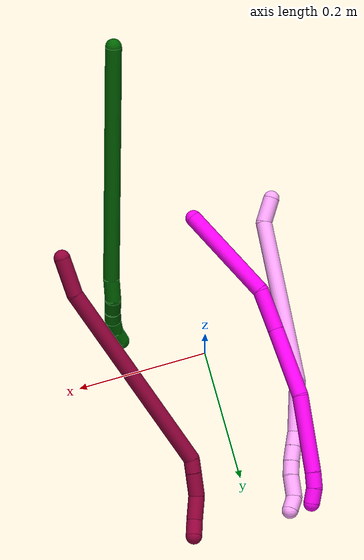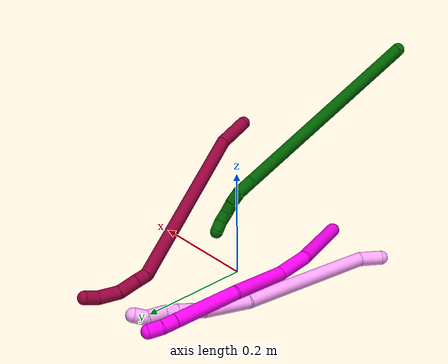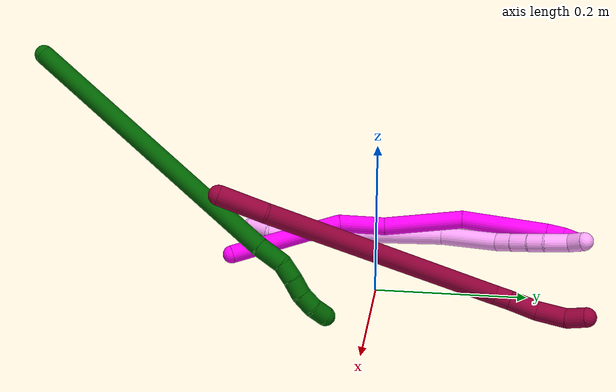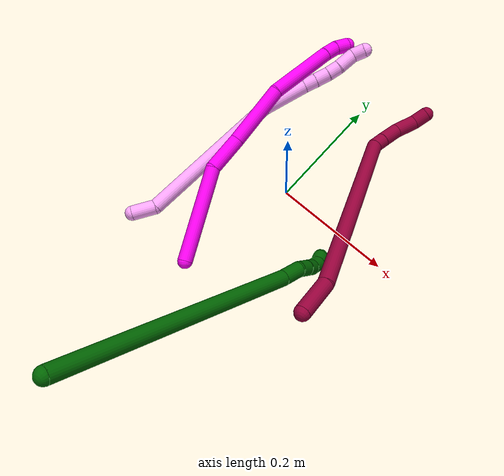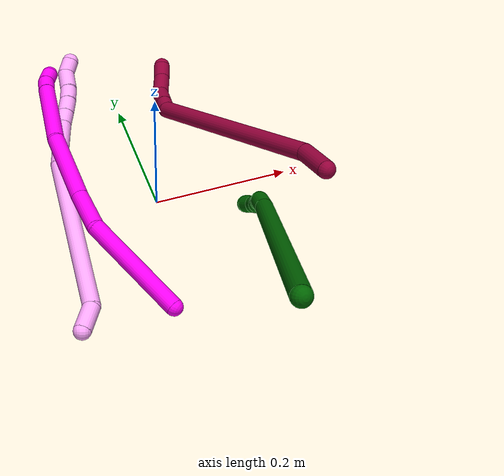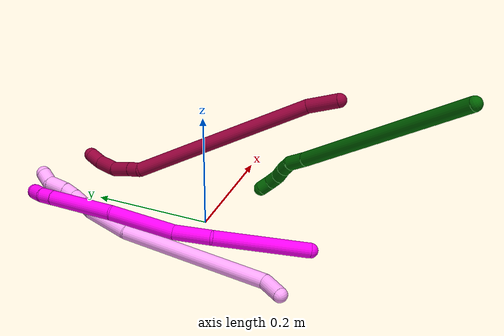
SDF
<sdf version="1.7">
 <world name="default">
  <model name="4">
   <static>0</static>
   <link name="4">
    <collision name="collision-cylinder-e_1_1_4">
     <pose>0.009957 0.015932 -0.006717 -1.96978 0.522515 -0.765976</pose>
     <geometry><cylinder><radius>0.0125</radius><length>0.039905</length></cylinder></geometry>
     <surface>
      <friction><ode><mu>1.16</mu><mu2>1.16</mu2><slip1>0</slip1><slip2>0</slip2></ode></friction>
      <contact><ode><kp>1e+06</kp><kd>1</kd><max_vel>0</max_vel><min_depth>0.001</min_depth></ode></contact>
     </surface>
    </collision>
    <visual name="visual-cylinder-e_1_1_4">
     <pose>0.009957 0.015932 -0.006717 -1.96978 0.522515 -0.765976</pose>
     <geometry><cylinder><radius>0.0125</radius><length>0.039905</length></cylinder></geometry>
     <material><ambient>1 0.65098 0.996078 1</ambient></material>
    </visual>
    <collision name="collision-cylinder-e_2_4_5">
     <pose>0.085458 0.138763 0.006058 -1.39044 0.542758 -0.456116</pose>
     <geometry><cylinder><radius>0.0125</radius><length>0.253796</length></cylinder></geometry>
     <surface>
      <friction><ode><mu>1.16</mu><mu2>1.16</mu2><slip1>0</slip1><slip2>0</slip2></ode></friction>
      <contact><ode><kp>1e+06</kp><kd>1</kd><max_vel>0</max_vel><min_depth>0.001</min_depth></ode></contact>
     </surface>
    </collision>
    <visual name="visual-cylinder-e_2_4_5">
     <pose>0.085458 0.138763 0.006058 -1.39044 0.542758 -0.456116</pose>
     <geometry><cylinder><radius>0.0125</radius><length>0.253796</length></cylinder></geometry>
     <material><ambient>1 0.65098 0.996078 1</ambient></material>
    </visual>
    <collision name="collision-cylinder-e_3_5_6">
     <pose>0.172602 0.279778 0.022072 -1.6724 0.562119 -0.618737</pose>
     <geometry><cylinder><radius>0.0125</radius><length>0.08106</length></cylinder></geometry>
     <surface>
      <friction><ode><mu>1.16</mu><mu2>1.16</mu2><slip1>0</slip1><slip2>0</slip2></ode></friction>
      <contact><ode><kp>1e+06</kp><kd>1</kd><max_vel>0</max_vel><min_depth>0.001</min_depth></ode></contact>
     </surface>
    </collision>
    <visual name="visual-cylinder-e_3_5_6">
     <pose>0.172602 0.279778 0.022072 -1.6724 0.562119 -0.618737</pose>
     <geometry><cylinder><radius>0.0125</radius><length>0.08106</length></cylinder></geometry>
     <material><ambient>1 0.65098 0.996078 1</ambient></material>
    </visual>
    <collision name="collision-cylinder-e_4_6_7">
     <pose>0.201436 0.322362 0.016395 -1.82484 0.690817 -0.870843</pose>
     <geometry><cylinder><radius>0.0125</radius><length>0.022702</length></cylinder></geometry>
     <surface>
      <friction><ode><mu>1.16</mu><mu2>1.16</mu2><slip1>0</slip1><slip2>0</slip2></ode></friction>
      <contact><ode><kp>1e+06</kp><kd>1</kd><max_vel>0</max_vel><min_depth>0.001</min_depth></ode></contact>
     </surface>
    </collision>
    <visual name="visual-cylinder-e_4_6_7">
     <pose>0.201436 0.322362 0.016395 -1.82484 0.690817 -0.870843</pose>
     <geometry><cylinder><radius>0.0125</radius><length>0.022702</length></cylinder></geometry>
     <material><ambient>1 0.65098 0.996078 1</ambient></material>
    </visual>
    <collision name="collision-cylinder-e_5_7_8">
     <pose>0.216306 0.339866 0.012169 -1.79153 0.689615 -0.843504</pose>
     <geometry><cylinder><radius>0.0125</radius><length>0.024006</length></cylinder></geometry>
     <surface>
      <friction><ode><mu>1.16</mu><mu2>1.16</mu2><slip1>0</slip1><slip2>0</slip2></ode></friction>
      <contact><ode><kp>1e+06</kp><kd>1</kd><max_vel>0</max_vel><min_depth>0.001</min_depth></ode></contact>
     </surface>
    </collision>
    <visual name="visual-cylinder-e_5_7_8">
     <pose>0.216306 0.339866 0.012169 -1.79153 0.689615 -0.843504</pose>
     <geometry><cylinder><radius>0.0125</radius><length>0.024006</length></cylinder></geometry>
     <material><ambient>1 0.65098 0.996078 1</ambient></material>
    </visual>
    <collision name="collision-cylinder-e_6_8_9">
     <pose>0.230882 0.357476 0.009414 -1.65541 0.678664 -0.73361</pose>
     <geometry><cylinder><radius>0.0125</radius><length>0.022111</length></cylinder></geometry>
     <surface>
      <friction><ode><mu>1.16</mu><mu2>1.16</mu2><slip1>0</slip1><slip2>0</slip2></ode></friction>
      <contact><ode><kp>1e+06</kp><kd>1</kd><max_vel>0</max_vel><min_depth>0.001</min_depth></ode></contact>
     </surface>
    </collision>
    <visual name="visual-cylinder-e_6_8_9">
     <pose>0.230882 0.357476 0.009414 -1.65541 0.678664 -0.73361</pose>
     <geometry><cylinder><radius>0.0125</radius><length>0.022111</length></cylinder></geometry>
     <material><ambient>1 0.65098 0.996078 1</ambient></material>
    </visual>
    <collision name="collision-cylinder-e_7_9_10">
     <pose>0.247182 0.379965 0.010363 -1.45092 0.588819 -0.525353</pose>
     <geometry><cylinder><radius>0.0125</radius><length>0.033705</length></cylinder></geometry>
     <surface>
      <friction><ode><mu>1.16</mu><mu2>1.16</mu2><slip1>0</slip1><slip2>0</slip2></ode></friction>
      <contact><ode><kp>1e+06</kp><kd>1</kd><max_vel>0</max_vel><min_depth>0.001</min_depth></ode></contact>
     </surface>
    </collision>
    <visual name="visual-cylinder-e_7_9_10">
     <pose>0.247182 0.379965 0.010363 -1.45092 0.588819 -0.525353</pose>
     <geometry><cylinder><radius>0.0125</radius><length>0.033705</length></cylinder></geometry>
     <material><ambient>1 0.65098 0.996078 1</ambient></material>
    </visual>
    <collision name="collision-cylinder-e_8_10_2">
     <pose>0.26491 0.40072 0.008551 -2.04231 0.828317 -1.24482</pose>
     <geometry><cylinder><radius>0.0125</radius><length>0.022715</length></cylinder></geometry>
     <surface>
      <friction><ode><mu>1.16</mu><mu2>1.16</mu2><slip1>0</slip1><slip2>0</slip2></ode></friction>
      <contact><ode><kp>1e+06</kp><kd>1</kd><max_vel>0</max_vel><min_depth>0.001</min_depth></ode></contact>
     </surface>
    </collision>
    <visual name="visual-cylinder-e_8_10_2">
     <pose>0.26491 0.40072 0.008551 -2.04231 0.828317 -1.24482</pose>
     <geometry><cylinder><radius>0.0125</radius><length>0.022715</length></cylinder></geometry>
     <material><ambient>1 0.65098 0.996078 1</ambient></material>
    </visual>
    <collision name="collision-sphere-2">
     <pose>0.273278 0.407561 0.005063 0 -0 0</pose>
     <geometry><sphere><radius>0.0125</radius></sphere></geometry>
     <surface>
      <friction><ode><mu>1.16</mu><mu2>1.16</mu2><slip1>0</slip1><slip2>0</slip2></ode></friction>
      <contact><ode><kp>1e+06</kp><kd>1</kd><max_vel>0</max_vel><min_depth>0.001</min_depth></ode></contact>
     </surface>
    </collision>
    <visual name="visual-sphere-2">
     <pose>0.273278 0.407561 0.005063 0 -0 0</pose>
     <geometry><sphere><radius>0.0125</radius></sphere></geometry>
     <material><ambient>1 0.65098 0.996078 1</ambient></material>
    </visual>
    <collision name="collision-sphere-10">
     <pose>0.256542 0.393879 0.012039 0 -0 0</pose>
     <geometry><sphere><radius>0.0125</radius></sphere></geometry>
     <surface>
      <friction><ode><mu>1.16</mu><mu2>1.16</mu2><slip1>0</slip1><slip2>0</slip2></ode></friction>
      <contact><ode><kp>1e+06</kp><kd>1</kd><max_vel>0</max_vel><min_depth>0.001</min_depth></ode></contact>
     </surface>
    </collision>
    <visual name="visual-sphere-10">
     <pose>0.256542 0.393879 0.012039 0 -0 0</pose>
     <geometry><sphere><radius>0.0125</radius></sphere></geometry>
     <material><ambient>1 0.65098 0.996078 1</ambient></material>
    </visual>
    <collision name="collision-sphere-9">
     <pose>0.237822 0.366051 0.008687 0 -0 0</pose>
     <geometry><sphere><radius>0.0125</radius></sphere></geometry>
     <surface>
      <friction><ode><mu>1.16</mu><mu2>1.16</mu2><slip1>0</slip1><slip2>0</slip2></ode></friction>
      <contact><ode><kp>1e+06</kp><kd>1</kd><max_vel>0</max_vel><min_depth>0.001</min_depth></ode></contact>
     </surface>
    </collision>
    <visual name="visual-sphere-9">
     <pose>0.237822 0.366051 0.008687 0 -0 0</pose>
     <geometry><sphere><radius>0.0125</radius></sphere></geometry>
     <material><ambient>1 0.65098 0.996078 1</ambient></material>
    </visual>
    <collision name="collision-sphere-4">
     <pose>0.019915 0.031864 -0.013434 0 -0 0</pose>
     <geometry><sphere><radius>0.0125</radius></sphere></geometry>
     <surface>
      <friction><ode><mu>1.16</mu><mu2>1.16</mu2><slip1>0</slip1><slip2>0</slip2></ode></friction>
      <contact><ode><kp>1e+06</kp><kd>1</kd><max_vel>0</max_vel><min_depth>0.001</min_depth></ode></contact>
     </surface>
    </collision>
    <visual name="visual-sphere-4">
     <pose>0.019915 0.031864 -0.013434 0 -0 0</pose>
     <geometry><sphere><radius>0.0125</radius></sphere></geometry>
     <material><ambient>1 0.65098 0.996078 1</ambient></material>
    </visual>
    <collision name="collision-sphere-1">
     <geometry><sphere><radius>0.0125</radius></sphere></geometry>
     <surface>
      <friction><ode><mu>1.16</mu><mu2>1.16</mu2><slip1>0</slip1><slip2>0</slip2></ode></friction>
      <contact><ode><kp>1e+06</kp><kd>1</kd><max_vel>0</max_vel><min_depth>0.001</min_depth></ode></contact>
     </surface>
    </collision>
    <visual name="visual-sphere-1">
     <geometry><sphere><radius>0.0125</radius></sphere></geometry>
     <material><ambient>1 0.65098 0.996078 1</ambient></material>
    </visual>
    <collision name="collision-sphere-8">
     <pose>0.223942 0.348901 0.010142 0 -0 0</pose>
     <geometry><sphere><radius>0.0125</radius></sphere></geometry>
     <surface>
      <friction><ode><mu>1.16</mu><mu2>1.16</mu2><slip1>0</slip1><slip2>0</slip2></ode></friction>
      <contact><ode><kp>1e+06</kp><kd>1</kd><max_vel>0</max_vel><min_depth>0.001</min_depth></ode></contact>
     </surface>
    </collision>
    <visual name="visual-sphere-8">
     <pose>0.223942 0.348901 0.010142 0 -0 0</pose>
     <geometry><sphere><radius>0.0125</radius></sphere></geometry>
     <material><ambient>1 0.65098 0.996078 1</ambient></material>
    </visual>
    <collision name="collision-sphere-5">
     <pose>0.151 0.245661 0.02555 0 -0 0</pose>
     <geometry><sphere><radius>0.0125</radius></sphere></geometry>
     <surface>
      <friction><ode><mu>1.16</mu><mu2>1.16</mu2><slip1>0</slip1><slip2>0</slip2></ode></friction>
      <contact><ode><kp>1e+06</kp><kd>1</kd><max_vel>0</max_vel><min_depth>0.001</min_depth></ode></contact>
     </surface>
    </collision>
    <visual name="visual-sphere-5">
     <pose>0.151 0.245661 0.02555 0 -0 0</pose>
     <geometry><sphere><radius>0.0125</radius></sphere></geometry>
     <material><ambient>1 0.65098 0.996078 1</ambient></material>
    </visual>
    <collision name="collision-sphere-6">
     <pose>0.194204 0.313894 0.018594 0 -0 0</pose>
     <geometry><sphere><radius>0.0125</radius></sphere></geometry>
     <surface>
      <friction><ode><mu>1.16</mu><mu2>1.16</mu2><slip1>0</slip1><slip2>0</slip2></ode></friction>
      <contact><ode><kp>1e+06</kp><kd>1</kd><max_vel>0</max_vel><min_depth>0.001</min_depth></ode></contact>
     </surface>
    </collision>
    <visual name="visual-sphere-6">
     <pose>0.194204 0.313894 0.018594 0 -0 0</pose>
     <geometry><sphere><radius>0.0125</radius></sphere></geometry>
     <material><ambient>1 0.65098 0.996078 1</ambient></material>
    </visual>
    <collision name="collision-sphere-7">
     <pose>0.208669 0.33083 0.014197 0 -0 0</pose>
     <geometry><sphere><radius>0.0125</radius></sphere></geometry>
     <surface>
      <friction><ode><mu>1.16</mu><mu2>1.16</mu2><slip1>0</slip1><slip2>0</slip2></ode></friction>
      <contact><ode><kp>1e+06</kp><kd>1</kd><max_vel>0</max_vel><min_depth>0.001</min_depth></ode></contact>
     </surface>
    </collision>
    <visual name="visual-sphere-7">
     <pose>0.208669 0.33083 0.014197 0 -0 0</pose>
     <geometry><sphere><radius>0.0125</radius></sphere></geometry>
     <material><ambient>1 0.65098 0.996078 1</ambient></material>
    </visual>
    <inertial>
     <pose>0.130593 0.207645 0.008949 0 -0 0</pose>
     <mass>0.5</mass>
     <inertia>
      <ixx>0.000569</ixx>
      <ixy>0</ixy>
      <ixz>0</ixz>
      <iyy>2.4e-05</iyy>
      <iyz>0</iyz>
      <izz>-0.001955</izz>
     </inertia>
    </inertial>
   </link>
   <pose>-0.164673 -0.201954 0.021502 -1.41065 -1.05729 1.2031</pose>
  </model>
  <model name="6">
   <static>0</static>
   <link name="6">
    <collision name="collision-cylinder-e_1_1_4">
     <pose>-0.000641 0.058292 -0.179311 -2.82728 -0.003401 0.021462</pose>
     <geometry><cylinder><radius>0.0125</radius><length>0.377099</length></cylinder></geometry>
     <surface>
      <friction><ode><mu>1.16</mu><mu2>1.16</mu2><slip1>0</slip1><slip2>0</slip2></ode></friction>
      <contact><ode><kp>1e+06</kp><kd>1</kd><max_vel>0</max_vel><min_depth>0.001</min_depth></ode></contact>
     </surface>
    </collision>
    <visual name="visual-cylinder-e_1_1_4">
     <pose>-0.000641 0.058292 -0.179311 -2.82728 -0.003401 0.021462</pose>
     <geometry><cylinder><radius>0.0125</radius><length>0.377099</length></cylinder></geometry>
     <material><ambient>0 0.392157 0.003922 1</ambient></material>
    </visual>
    <collision name="collision-cylinder-e_2_4_5">
     <pose>-0.00282 0.121086 -0.375623 -2.88273 -0.087206 0.646887</pose>
     <geometry><cylinder><radius>0.0125</radius><length>0.035307</length></cylinder></geometry>
     <surface>
      <friction><ode><mu>1.16</mu><mu2>1.16</mu2><slip1>0</slip1><slip2>0</slip2></ode></friction>
      <contact><ode><kp>1e+06</kp><kd>1</kd><max_vel>0</max_vel><min_depth>0.001</min_depth></ode></contact>
     </surface>
    </collision>
    <visual name="visual-cylinder-e_2_4_5">
     <pose>-0.00282 0.121086 -0.375623 -2.88273 -0.087206 0.646887</pose>
     <geometry><cylinder><radius>0.0125</radius><length>0.035307</length></cylinder></geometry>
     <material><ambient>0 0.392157 0.003922 1</ambient></material>
    </visual>
    <collision name="collision-cylinder-e_3_5_6">
     <pose>-0.00116 0.128155 -0.403468 -2.90914 0.279434 -1.75582</pose>
     <geometry><cylinder><radius>0.0125</radius><length>0.023187</length></cylinder></geometry>
     <surface>
      <friction><ode><mu>1.16</mu><mu2>1.16</mu2><slip1>0</slip1><slip2>0</slip2></ode></friction>
      <contact><ode><kp>1e+06</kp><kd>1</kd><max_vel>0</max_vel><min_depth>0.001</min_depth></ode></contact>
     </surface>
    </collision>
    <visual name="visual-cylinder-e_3_5_6">
     <pose>-0.00116 0.128155 -0.403468 -2.90914 0.279434 -1.75582</pose>
     <geometry><cylinder><radius>0.0125</radius><length>0.023187</length></cylinder></geometry>
     <material><ambient>0 0.392157 0.003922 1</ambient></material>
    </visual>
    <collision name="collision-cylinder-e_4_6_7">
     <pose>0.00606 0.13213 -0.424417 -3.00319 0.375562 -2.44204</pose>
     <geometry><cylinder><radius>0.0125</radius><length>0.021933</length></cylinder></geometry>
     <surface>
      <friction><ode><mu>1.16</mu><mu2>1.16</mu2><slip1>0</slip1><slip2>0</slip2></ode></friction>
      <contact><ode><kp>1e+06</kp><kd>1</kd><max_vel>0</max_vel><min_depth>0.001</min_depth></ode></contact>
     </surface>
    </collision>
    <visual name="visual-cylinder-e_4_6_7">
     <pose>0.00606 0.13213 -0.424417 -3.00319 0.375562 -2.44204</pose>
     <geometry><cylinder><radius>0.0125</radius><length>0.021933</length></cylinder></geometry>
     <material><ambient>0 0.392157 0.003922 1</ambient></material>
    </visual>
    <collision name="collision-cylinder-e_5_7_8">
     <pose>0.011689 0.134387 -0.445352 -3.06331 0.146831 -2.16302</pose>
     <geometry><cylinder><radius>0.0125</radius><length>0.021964</length></cylinder></geometry>
     <surface>
      <friction><ode><mu>1.16</mu><mu2>1.16</mu2><slip1>0</slip1><slip2>0</slip2></ode></friction>
      <contact><ode><kp>1e+06</kp><kd>1</kd><max_vel>0</max_vel><min_depth>0.001</min_depth></ode></contact>
     </surface>
    </collision>
    <visual name="visual-cylinder-e_5_7_8">
     <pose>0.011689 0.134387 -0.445352 -3.06331 0.146831 -2.16302</pose>
     <geometry><cylinder><radius>0.0125</radius><length>0.021964</length></cylinder></geometry>
     <material><ambient>0 0.392157 0.003922 1</ambient></material>
    </visual>
    <collision name="collision-cylinder-e_6_8_2">
     <pose>0.01315 0.13323 -0.466238 2.9446 -0.014227 -0.143729</pose>
     <geometry><cylinder><radius>0.0125</radius><length>0.02051</length></cylinder></geometry>
     <surface>
      <friction><ode><mu>1.16</mu><mu2>1.16</mu2><slip1>0</slip1><slip2>0</slip2></ode></friction>
      <contact><ode><kp>1e+06</kp><kd>1</kd><max_vel>0</max_vel><min_depth>0.001</min_depth></ode></contact>
     </surface>
    </collision>
    <visual name="visual-cylinder-e_6_8_2">
     <pose>0.01315 0.13323 -0.466238 2.9446 -0.014227 -0.143729</pose>
     <geometry><cylinder><radius>0.0125</radius><length>0.02051</length></cylinder></geometry>
     <material><ambient>0 0.392157 0.003922 1</ambient></material>
    </visual>
    <collision name="collision-sphere-2">
     <pose>0.013004 0.131223 -0.476293 0 -0 0</pose>
     <geometry><sphere><radius>0.0125</radius></sphere></geometry>
     <surface>
      <friction><ode><mu>1.16</mu><mu2>1.16</mu2><slip1>0</slip1><slip2>0</slip2></ode></friction>
      <contact><ode><kp>1e+06</kp><kd>1</kd><max_vel>0</max_vel><min_depth>0.001</min_depth></ode></contact>
     </surface>
    </collision>
    <visual name="visual-sphere-2">
     <pose>0.013004 0.131223 -0.476293 0 -0 0</pose>
     <geometry><sphere><radius>0.0125</radius></sphere></geometry>
     <material><ambient>0 0.392157 0.003922 1</ambient></material>
    </visual>
    <collision name="collision-sphere-4">
     <pose>-0.001283 0.116584 -0.358623 0 -0 0</pose>
     <geometry><sphere><radius>0.0125</radius></sphere></geometry>
     <surface>
      <friction><ode><mu>1.16</mu><mu2>1.16</mu2><slip1>0</slip1><slip2>0</slip2></ode></friction>
      <contact><ode><kp>1e+06</kp><kd>1</kd><max_vel>0</max_vel><min_depth>0.001</min_depth></ode></contact>
     </surface>
    </collision>
    <visual name="visual-sphere-4">
     <pose>-0.001283 0.116584 -0.358623 0 -0 0</pose>
     <geometry><sphere><radius>0.0125</radius></sphere></geometry>
     <material><ambient>0 0.392157 0.003922 1</ambient></material>
    </visual>
    <collision name="collision-sphere-1">
     <geometry><sphere><radius>0.0125</radius></sphere></geometry>
     <surface>
      <friction><ode><mu>1.16</mu><mu2>1.16</mu2><slip1>0</slip1><slip2>0</slip2></ode></friction>
      <contact><ode><kp>1e+06</kp><kd>1</kd><max_vel>0</max_vel><min_depth>0.001</min_depth></ode></contact>
     </surface>
    </collision>
    <visual name="visual-sphere-1">
     <geometry><sphere><radius>0.0125</radius></sphere></geometry>
     <material><ambient>0 0.392157 0.003922 1</ambient></material>
    </visual>
    <collision name="collision-sphere-8">
     <pose>0.013296 0.135237 -0.456182 0 -0 0</pose>
     <geometry><sphere><radius>0.0125</radius></sphere></geometry>
     <surface>
      <friction><ode><mu>1.16</mu><mu2>1.16</mu2><slip1>0</slip1><slip2>0</slip2></ode></friction>
      <contact><ode><kp>1e+06</kp><kd>1</kd><max_vel>0</max_vel><min_depth>0.001</min_depth></ode></contact>
     </surface>
    </collision>
    <visual name="visual-sphere-8">
     <pose>0.013296 0.135237 -0.456182 0 -0 0</pose>
     <geometry><sphere><radius>0.0125</radius></sphere></geometry>
     <material><ambient>0 0.392157 0.003922 1</ambient></material>
    </visual>
    <collision name="collision-sphere-5">
     <pose>-0.004358 0.125588 -0.392624 0 -0 0</pose>
     <geometry><sphere><radius>0.0125</radius></sphere></geometry>
     <surface>
      <friction><ode><mu>1.16</mu><mu2>1.16</mu2><slip1>0</slip1><slip2>0</slip2></ode></friction>
      <contact><ode><kp>1e+06</kp><kd>1</kd><max_vel>0</max_vel><min_depth>0.001</min_depth></ode></contact>
     </surface>
    </collision>
    <visual name="visual-sphere-5">
     <pose>-0.004358 0.125588 -0.392624 0 -0 0</pose>
     <geometry><sphere><radius>0.0125</radius></sphere></geometry>
     <material><ambient>0 0.392157 0.003922 1</ambient></material>
    </visual>
    <collision name="collision-sphere-6">
     <pose>0.002038 0.130722 -0.414312 0 -0 0</pose>
     <geometry><sphere><radius>0.0125</radius></sphere></geometry>
     <surface>
      <friction><ode><mu>1.16</mu><mu2>1.16</mu2><slip1>0</slip1><slip2>0</slip2></ode></friction>
      <contact><ode><kp>1e+06</kp><kd>1</kd><max_vel>0</max_vel><min_depth>0.001</min_depth></ode></contact>
     </surface>
    </collision>
    <visual name="visual-sphere-6">
     <pose>0.002038 0.130722 -0.414312 0 -0 0</pose>
     <geometry><sphere><radius>0.0125</radius></sphere></geometry>
     <material><ambient>0 0.392157 0.003922 1</ambient></material>
    </visual>
    <collision name="collision-sphere-7">
     <pose>0.010083 0.133537 -0.434521 0 -0 0</pose>
     <geometry><sphere><radius>0.0125</radius></sphere></geometry>
     <surface>
      <friction><ode><mu>1.16</mu><mu2>1.16</mu2><slip1>0</slip1><slip2>0</slip2></ode></friction>
      <contact><ode><kp>1e+06</kp><kd>1</kd><max_vel>0</max_vel><min_depth>0.001</min_depth></ode></contact>
     </surface>
    </collision>
    <visual name="visual-sphere-7">
     <pose>0.010083 0.133537 -0.434521 0 -0 0</pose>
     <geometry><sphere><radius>0.0125</radius></sphere></geometry>
     <material><ambient>0 0.392157 0.003922 1</ambient></material>
    </visual>
    <inertial>
     <pose>0.000582 0.075622 -0.237777 0 -0 0</pose>
     <mass>0.5</mass>
     <inertia>
      <ixx>0.004581</ixx>
      <ixy>0</ixy>
      <ixz>0</ixz>
      <iyy>-0.00416</iyy>
      <iyz>0</iyz>
      <izz>-0.001411</izz>
     </inertia>
    </inertial>
   </link>
   <pose>0.018105 -0.432183 0.311392 0.167712 0.866195 -1.26917</pose>
  </model>
  <model name="8">
   <static>0</static>
   <link name="8">
    <collision name="collision-cylinder-e_1_1_4">
     <pose>1.6e-05 0.004833 -0.029149 -2.97728 0.000546 -0.006636</pose>
     <geometry><cylinder><radius>0.0125</radius><length>0.059095</length></cylinder></geometry>
     <surface>
      <friction><ode><mu>1.16</mu><mu2>1.16</mu2><slip1>0</slip1><slip2>0</slip2></ode></friction>
      <contact><ode><kp>1e+06</kp><kd>1</kd><max_vel>0</max_vel><min_depth>0.001</min_depth></ode></contact>
     </surface>
    </collision>
    <visual name="visual-cylinder-e_1_1_4">
     <pose>1.6e-05 0.004833 -0.029149 -2.97728 0.000546 -0.006636</pose>
     <geometry><cylinder><radius>0.0125</radius><length>0.059095</length></cylinder></geometry>
     <material><ambient>0.584314 0 0.227451 1</ambient></material>
    </visual>
    <collision name="collision-cylinder-e_2_4_5">
     <pose>0.004746 -0.009082 -0.217104 3.02408 0.029469 0.490895</pose>
     <geometry><cylinder><radius>0.0125</radius><length>0.319955</length></cylinder></geometry>
     <surface>
      <friction><ode><mu>1.16</mu><mu2>1.16</mu2><slip1>0</slip1><slip2>0</slip2></ode></friction>
      <contact><ode><kp>1e+06</kp><kd>1</kd><max_vel>0</max_vel><min_depth>0.001</min_depth></ode></contact>
     </surface>
    </collision>
    <visual name="visual-cylinder-e_2_4_5">
     <pose>0.004746 -0.009082 -0.217104 3.02408 0.029469 0.490895</pose>
     <geometry><cylinder><radius>0.0125</radius><length>0.319955</length></cylinder></geometry>
     <material><ambient>0.584314 0 0.227451 1</ambient></material>
    </visual>
    <collision name="collision-cylinder-e_3_5_6">
     <pose>0.008772 -0.023966 -0.385699 -2.76565 -0.06526 0.339895</pose>
     <geometry><cylinder><radius>0.0125</radius><length>0.021093</length></cylinder></geometry>
     <surface>
      <friction><ode><mu>1.16</mu><mu2>1.16</mu2><slip1>0</slip1><slip2>0</slip2></ode></friction>
      <contact><ode><kp>1e+06</kp><kd>1</kd><max_vel>0</max_vel><min_depth>0.001</min_depth></ode></contact>
     </surface>
    </collision>
    <visual name="visual-cylinder-e_3_5_6">
     <pose>0.008772 -0.023966 -0.385699 -2.76565 -0.06526 0.339895</pose>
     <geometry><cylinder><radius>0.0125</radius><length>0.021093</length></cylinder></geometry>
     <material><ambient>0.584314 0 0.227451 1</ambient></material>
    </visual>
    <collision name="collision-cylinder-e_4_6_7">
     <pose>0.007747 -0.013547 -0.412429 -2.77239 -0.018527 0.099142</pose>
     <geometry><cylinder><radius>0.0125</radius><length>0.036337</length></cylinder></geometry>
     <surface>
      <friction><ode><mu>1.16</mu><mu2>1.16</mu2><slip1>0</slip1><slip2>0</slip2></ode></friction>
      <contact><ode><kp>1e+06</kp><kd>1</kd><max_vel>0</max_vel><min_depth>0.001</min_depth></ode></contact>
     </surface>
    </collision>
    <visual name="visual-cylinder-e_4_6_7">
     <pose>0.007747 -0.013547 -0.412429 -2.77239 -0.018527 0.099142</pose>
     <geometry><cylinder><radius>0.0125</radius><length>0.036337</length></cylinder></geometry>
     <material><ambient>0.584314 0 0.227451 1</ambient></material>
    </visual>
    <collision name="collision-cylinder-e_5_7_8">
     <pose>0.003812 0.00439 -0.444315 -2.49071 -0.189258 0.548379</pose>
     <geometry><cylinder><radius>0.0125</radius><length>0.038254</length></cylinder></geometry>
     <surface>
      <friction><ode><mu>1.16</mu><mu2>1.16</mu2><slip1>0</slip1><slip2>0</slip2></ode></friction>
      <contact><ode><kp>1e+06</kp><kd>1</kd><max_vel>0</max_vel><min_depth>0.001</min_depth></ode></contact>
     </surface>
    </collision>
    <visual name="visual-cylinder-e_5_7_8">
     <pose>0.003812 0.00439 -0.444315 -2.49071 -0.189258 0.548379</pose>
     <geometry><cylinder><radius>0.0125</radius><length>0.038254</length></cylinder></geometry>
     <material><ambient>0.584314 0 0.227451 1</ambient></material>
    </visual>
    <collision name="collision-cylinder-e_6_8_2">
     <pose>-0.005723 0.023121 -0.467647 -2.42208 -0.489298 1.17195</pose>
     <geometry><cylinder><radius>0.0125</radius><length>0.025266</length></cylinder></geometry>
     <surface>
      <friction><ode><mu>1.16</mu><mu2>1.16</mu2><slip1>0</slip1><slip2>0</slip2></ode></friction>
      <contact><ode><kp>1e+06</kp><kd>1</kd><max_vel>0</max_vel><min_depth>0.001</min_depth></ode></contact>
     </surface>
    </collision>
    <visual name="visual-cylinder-e_6_8_2">
     <pose>-0.005723 0.023121 -0.467647 -2.42208 -0.489298 1.17195</pose>
     <geometry><cylinder><radius>0.0125</radius><length>0.025266</length></cylinder></geometry>
     <material><ambient>0.584314 0 0.227451 1</ambient></material>
    </visual>
    <collision name="collision-sphere-2">
     <pose>-0.011661 0.030469 -0.476033 0 -0 0</pose>
     <geometry><sphere><radius>0.0125</radius></sphere></geometry>
     <surface>
      <friction><ode><mu>1.16</mu><mu2>1.16</mu2><slip1>0</slip1><slip2>0</slip2></ode></friction>
      <contact><ode><kp>1e+06</kp><kd>1</kd><max_vel>0</max_vel><min_depth>0.001</min_depth></ode></contact>
     </surface>
    </collision>
    <visual name="visual-sphere-2">
     <pose>-0.011661 0.030469 -0.476033 0 -0 0</pose>
     <geometry><sphere><radius>0.0125</radius></sphere></geometry>
     <material><ambient>0.584314 0 0.227451 1</ambient></material>
    </visual>
    <collision name="collision-sphere-4">
     <pose>3.2e-05 0.009666 -0.058299 0 -0 0</pose>
     <geometry><sphere><radius>0.0125</radius></sphere></geometry>
     <surface>
      <friction><ode><mu>1.16</mu><mu2>1.16</mu2><slip1>0</slip1><slip2>0</slip2></ode></friction>
      <contact><ode><kp>1e+06</kp><kd>1</kd><max_vel>0</max_vel><min_depth>0.001</min_depth></ode></contact>
     </surface>
    </collision>
    <visual name="visual-sphere-4">
     <pose>3.2e-05 0.009666 -0.058299 0 -0 0</pose>
     <geometry><sphere><radius>0.0125</radius></sphere></geometry>
     <material><ambient>0.584314 0 0.227451 1</ambient></material>
    </visual>
    <collision name="collision-sphere-1">
     <geometry><sphere><radius>0.0125</radius></sphere></geometry>
     <surface>
      <friction><ode><mu>1.16</mu><mu2>1.16</mu2><slip1>0</slip1><slip2>0</slip2></ode></friction>
      <contact><ode><kp>1e+06</kp><kd>1</kd><max_vel>0</max_vel><min_depth>0.001</min_depth></ode></contact>
     </surface>
    </collision>
    <visual name="visual-sphere-1">
     <geometry><sphere><radius>0.0125</radius></sphere></geometry>
     <material><ambient>0.584314 0 0.227451 1</ambient></material>
    </visual>
    <collision name="collision-sphere-8">
     <pose>0.000214 0.015772 -0.45926 0 -0 0</pose>
     <geometry><sphere><radius>0.0125</radius></sphere></geometry>
     <surface>
      <friction><ode><mu>1.16</mu><mu2>1.16</mu2><slip1>0</slip1><slip2>0</slip2></ode></friction>
      <contact><ode><kp>1e+06</kp><kd>1</kd><max_vel>0</max_vel><min_depth>0.001</min_depth></ode></contact>
     </surface>
    </collision>
    <visual name="visual-sphere-8">
     <pose>0.000214 0.015772 -0.45926 0 -0 0</pose>
     <geometry><sphere><radius>0.0125</radius></sphere></geometry>
     <material><ambient>0.584314 0 0.227451 1</ambient></material>
    </visual>
    <collision name="collision-sphere-5">
     <pose>0.00946 -0.02783 -0.37591 0 -0 0</pose>
     <geometry><sphere><radius>0.0125</radius></sphere></geometry>
     <surface>
      <friction><ode><mu>1.16</mu><mu2>1.16</mu2><slip1>0</slip1><slip2>0</slip2></ode></friction>
      <contact><ode><kp>1e+06</kp><kd>1</kd><max_vel>0</max_vel><min_depth>0.001</min_depth></ode></contact>
     </surface>
    </collision>
    <visual name="visual-sphere-5">
     <pose>0.00946 -0.02783 -0.37591 0 -0 0</pose>
     <geometry><sphere><radius>0.0125</radius></sphere></geometry>
     <material><ambient>0.584314 0 0.227451 1</ambient></material>
    </visual>
    <collision name="collision-sphere-6">
     <pose>0.008084 -0.020102 -0.395488 0 -0 0</pose>
     <geometry><sphere><radius>0.0125</radius></sphere></geometry>
     <surface>
      <friction><ode><mu>1.16</mu><mu2>1.16</mu2><slip1>0</slip1><slip2>0</slip2></ode></friction>
      <contact><ode><kp>1e+06</kp><kd>1</kd><max_vel>0</max_vel><min_depth>0.001</min_depth></ode></contact>
     </surface>
    </collision>
    <visual name="visual-sphere-6">
     <pose>0.008084 -0.020102 -0.395488 0 -0 0</pose>
     <geometry><sphere><radius>0.0125</radius></sphere></geometry>
     <material><ambient>0.584314 0 0.227451 1</ambient></material>
    </visual>
    <collision name="collision-sphere-7">
     <pose>0.007411 -0.006991 -0.429371 0 -0 0</pose>
     <geometry><sphere><radius>0.0125</radius></sphere></geometry>
     <surface>
      <friction><ode><mu>1.16</mu><mu2>1.16</mu2><slip1>0</slip1><slip2>0</slip2></ode></friction>
      <contact><ode><kp>1e+06</kp><kd>1</kd><max_vel>0</max_vel><min_depth>0.001</min_depth></ode></contact>
     </surface>
    </collision>
    <visual name="visual-sphere-7">
     <pose>0.007411 -0.006991 -0.429371 0 -0 0</pose>
     <geometry><sphere><radius>0.0125</radius></sphere></geometry>
     <material><ambient>0.584314 0 0.227451 1</ambient></material>
    </visual>
    <inertial>
     <pose>0.003974 -0.005732 -0.246241 0 -0 0</pose>
     <mass>0.5</mass>
     <inertia>
      <ixx>0.003747</ixx>
      <ixy>0</ixy>
      <ixz>0</ixz>
      <iyy>-0.001126</iyy>
      <iyz>0</iyz>
      <izz>0.000195</izz>
     </inertia>
    </inertial>
   </link>
   <pose>0.173853 -0.171665 0.183481 0.299306 1.16547 -1.00221</pose>
  </model>
  <model name="10">
   <static>0</static>
   <link name="10">
    <collision name="collision-cylinder-e_1_1_4">
     <pose>0.008299 0.017102 0.07765 -0.216786 0.103995 -0.011327</pose>
     <geometry><cylinder><radius>0.0125</radius><length>0.159885</length></cylinder></geometry>
     <surface>
      <friction><ode><mu>1.16</mu><mu2>1.16</mu2><slip1>0</slip1><slip2>0</slip2></ode></friction>
      <contact><ode><kp>1e+06</kp><kd>1</kd><max_vel>0</max_vel><min_depth>0.001</min_depth></ode></contact>
     </surface>
    </collision>
    <visual name="visual-cylinder-e_1_1_4">
     <pose>0.008299 0.017102 0.07765 -0.216786 0.103995 -0.011327</pose>
     <geometry><cylinder><radius>0.0125</radius><length>0.159885</length></cylinder></geometry>
     <material><ambient>1 0 0.964706 1</ambient></material>
    </visual>
    <collision name="collision-cylinder-e_2_4_5">
     <pose>0.013544 0.052029 0.182063 -0.587543 -0.09467 0.02866</pose>
     <geometry><cylinder><radius>0.0125</radius><length>0.064601</length></cylinder></geometry>
     <surface>
      <friction><ode><mu>1.16</mu><mu2>1.16</mu2><slip1>0</slip1><slip2>0</slip2></ode></friction>
      <contact><ode><kp>1e+06</kp><kd>1</kd><max_vel>0</max_vel><min_depth>0.001</min_depth></ode></contact>
     </surface>
    </collision>
    <visual name="visual-cylinder-e_2_4_5">
     <pose>0.013544 0.052029 0.182063 -0.587543 -0.09467 0.02866</pose>
     <geometry><cylinder><radius>0.0125</radius><length>0.064601</length></cylinder></geometry>
     <material><ambient>1 0 0.964706 1</ambient></material>
    </visual>
    <collision name="collision-cylinder-e_3_5_6">
     <pose>0.014677 0.100572 0.254334 -0.59377 0.076107 -0.023293</pose>
     <geometry><cylinder><radius>0.0125</radius><length>0.110128</length></cylinder></geometry>
     <surface>
      <friction><ode><mu>1.16</mu><mu2>1.16</mu2><slip1>0</slip1><slip2>0</slip2></ode></friction>
      <contact><ode><kp>1e+06</kp><kd>1</kd><max_vel>0</max_vel><min_depth>0.001</min_depth></ode></contact>
     </surface>
    </collision>
    <visual name="visual-cylinder-e_3_5_6">
     <pose>0.014677 0.100572 0.254334 -0.59377 0.076107 -0.023293</pose>
     <geometry><cylinder><radius>0.0125</radius><length>0.110128</length></cylinder></geometry>
     <material><ambient>1 0 0.964706 1</ambient></material>
    </visual>
    <collision name="collision-cylinder-e_4_6_7">
     <pose>0.013158 0.172939 0.341056 -0.790619 -0.097082 0.040536</pose>
     <geometry><cylinder><radius>0.0125</radius><length>0.117742</length></cylinder></geometry>
     <surface>
      <friction><ode><mu>1.16</mu><mu2>1.16</mu2><slip1>0</slip1><slip2>0</slip2></ode></friction>
      <contact><ode><kp>1e+06</kp><kd>1</kd><max_vel>0</max_vel><min_depth>0.001</min_depth></ode></contact>
     </surface>
    </collision>
    <visual name="visual-cylinder-e_4_6_7">
     <pose>0.013158 0.172939 0.341056 -0.790619 -0.097082 0.040536</pose>
     <geometry><cylinder><radius>0.0125</radius><length>0.117742</length></cylinder></geometry>
     <material><ambient>1 0 0.964706 1</ambient></material>
    </visual>
    <collision name="collision-cylinder-e_5_7_8">
     <pose>0.005703 0.223548 0.389931 -0.863579 -0.147271 0.067958</pose>
     <geometry><cylinder><radius>0.0125</radius><length>0.023836</length></cylinder></geometry>
     <surface>
      <friction><ode><mu>1.16</mu><mu2>1.16</mu2><slip1>0</slip1><slip2>0</slip2></ode></friction>
      <contact><ode><kp>1e+06</kp><kd>1</kd><max_vel>0</max_vel><min_depth>0.001</min_depth></ode></contact>
     </surface>
    </collision>
    <visual name="visual-cylinder-e_5_7_8">
     <pose>0.005703 0.223548 0.389931 -0.863579 -0.147271 0.067958</pose>
     <geometry><cylinder><radius>0.0125</radius><length>0.023836</length></cylinder></geometry>
     <material><ambient>1 0 0.964706 1</ambient></material>
    </visual>
    <collision name="collision-cylinder-e_6_8_2">
     <pose>0.002051 0.2432 0.402467 -1.14282 -0.160527 0.103342</pose>
     <geometry><cylinder><radius>0.0125</radius><length>0.023807</length></cylinder></geometry>
     <surface>
      <friction><ode><mu>1.16</mu><mu2>1.16</mu2><slip1>0</slip1><slip2>0</slip2></ode></friction>
      <contact><ode><kp>1e+06</kp><kd>1</kd><max_vel>0</max_vel><min_depth>0.001</min_depth></ode></contact>
     </surface>
    </collision>
    <visual name="visual-cylinder-e_6_8_2">
     <pose>0.002051 0.2432 0.402467 -1.14282 -0.160527 0.103342</pose>
     <geometry><cylinder><radius>0.0125</radius><length>0.023807</length></cylinder></geometry>
     <material><ambient>1 0 0.964706 1</ambient></material>
    </visual>
    <collision name="collision-sphere-2">
     <pose>0.000148 0.253891 0.407344 0 -0 0</pose>
     <geometry><sphere><radius>0.0125</radius></sphere></geometry>
     <surface>
      <friction><ode><mu>1.16</mu><mu2>1.16</mu2><slip1>0</slip1><slip2>0</slip2></ode></friction>
      <contact><ode><kp>1e+06</kp><kd>1</kd><max_vel>0</max_vel><min_depth>0.001</min_depth></ode></contact>
     </surface>
    </collision>
    <visual name="visual-sphere-2">
     <pose>0.000148 0.253891 0.407344 0 -0 0</pose>
     <geometry><sphere><radius>0.0125</radius></sphere></geometry>
     <material><ambient>1 0 0.964706 1</ambient></material>
    </visual>
    <collision name="collision-sphere-4">
     <pose>0.016597 0.034204 0.1553 0 -0 0</pose>
     <geometry><sphere><radius>0.0125</radius></sphere></geometry>
     <surface>
      <friction><ode><mu>1.16</mu><mu2>1.16</mu2><slip1>0</slip1><slip2>0</slip2></ode></friction>
      <contact><ode><kp>1e+06</kp><kd>1</kd><max_vel>0</max_vel><min_depth>0.001</min_depth></ode></contact>
     </surface>
    </collision>
    <visual name="visual-sphere-4">
     <pose>0.016597 0.034204 0.1553 0 -0 0</pose>
     <geometry><sphere><radius>0.0125</radius></sphere></geometry>
     <material><ambient>1 0 0.964706 1</ambient></material>
    </visual>
    <collision name="collision-sphere-1">
     <geometry><sphere><radius>0.0125</radius></sphere></geometry>
     <surface>
      <friction><ode><mu>1.16</mu><mu2>1.16</mu2><slip1>0</slip1><slip2>0</slip2></ode></friction>
      <contact><ode><kp>1e+06</kp><kd>1</kd><max_vel>0</max_vel><min_depth>0.001</min_depth></ode></contact>
     </surface>
    </collision>
    <visual name="visual-sphere-1">
     <geometry><sphere><radius>0.0125</radius></sphere></geometry>
     <material><ambient>1 0 0.964706 1</ambient></material>
    </visual>
    <collision name="collision-sphere-8">
     <pose>0.003954 0.23251 0.39759 0 -0 0</pose>
     <geometry><sphere><radius>0.0125</radius></sphere></geometry>
     <surface>
      <friction><ode><mu>1.16</mu><mu2>1.16</mu2><slip1>0</slip1><slip2>0</slip2></ode></friction>
      <contact><ode><kp>1e+06</kp><kd>1</kd><max_vel>0</max_vel><min_depth>0.001</min_depth></ode></contact>
     </surface>
    </collision>
    <visual name="visual-sphere-8">
     <pose>0.003954 0.23251 0.39759 0 -0 0</pose>
     <geometry><sphere><radius>0.0125</radius></sphere></geometry>
     <material><ambient>1 0 0.964706 1</ambient></material>
    </visual>
    <collision name="collision-sphere-5">
     <pose>0.010491 0.069853 0.208827 0 -0 0</pose>
     <geometry><sphere><radius>0.0125</radius></sphere></geometry>
     <surface>
      <friction><ode><mu>1.16</mu><mu2>1.16</mu2><slip1>0</slip1><slip2>0</slip2></ode></friction>
      <contact><ode><kp>1e+06</kp><kd>1</kd><max_vel>0</max_vel><min_depth>0.001</min_depth></ode></contact>
     </surface>
    </collision>
    <visual name="visual-sphere-5">
     <pose>0.010491 0.069853 0.208827 0 -0 0</pose>
     <geometry><sphere><radius>0.0125</radius></sphere></geometry>
     <material><ambient>1 0 0.964706 1</ambient></material>
    </visual>
    <collision name="collision-sphere-6">
     <pose>0.018864 0.131291 0.299841 0 -0 0</pose>
     <geometry><sphere><radius>0.0125</radius></sphere></geometry>
     <surface>
      <friction><ode><mu>1.16</mu><mu2>1.16</mu2><slip1>0</slip1><slip2>0</slip2></ode></friction>
      <contact><ode><kp>1e+06</kp><kd>1</kd><max_vel>0</max_vel><min_depth>0.001</min_depth></ode></contact>
     </surface>
    </collision>
    <visual name="visual-sphere-6">
     <pose>0.018864 0.131291 0.299841 0 -0 0</pose>
     <geometry><sphere><radius>0.0125</radius></sphere></geometry>
     <material><ambient>1 0 0.964706 1</ambient></material>
    </visual>
    <collision name="collision-sphere-7">
     <pose>0.007451 0.214587 0.382272 0 -0 0</pose>
     <geometry><sphere><radius>0.0125</radius></sphere></geometry>
     <surface>
      <friction><ode><mu>1.16</mu><mu2>1.16</mu2><slip1>0</slip1><slip2>0</slip2></ode></friction>
      <contact><ode><kp>1e+06</kp><kd>1</kd><max_vel>0</max_vel><min_depth>0.001</min_depth></ode></contact>
     </surface>
    </collision>
    <visual name="visual-sphere-7">
     <pose>0.007451 0.214587 0.382272 0 -0 0</pose>
     <geometry><sphere><radius>0.0125</radius></sphere></geometry>
     <material><ambient>1 0 0.964706 1</ambient></material>
    </visual>
    <inertial>
     <pose>0.011104 0.097304 0.222437 0 -0 0</pose>
     <mass>0.5</mass>
     <inertia>
      <ixx>0.000629</ixx>
      <ixy>0</ixy>
      <ixz>0</ixz>
      <iyy>0.000577</iyy>
      <iyz>0</iyz>
      <izz>-0.000252</izz>
     </inertia>
    </inertial>
   </link>
   <pose>-0.040315 -0.204784 0.024378 -0.559698 -1.46213 -0.344608</pose>
  </model>
 </world>
</sdf>
